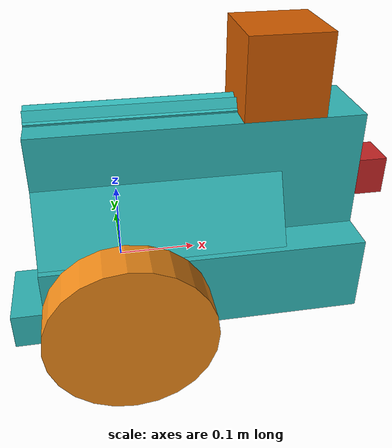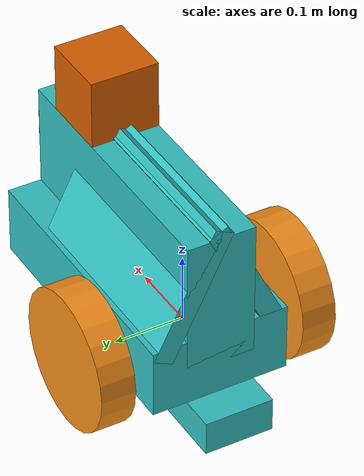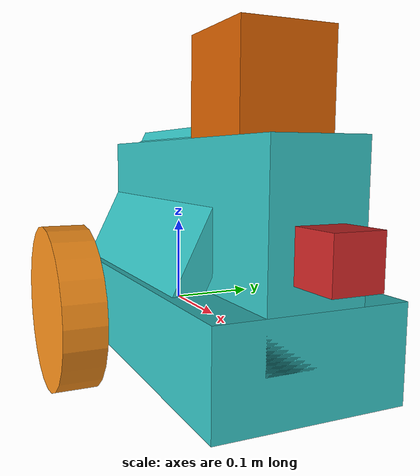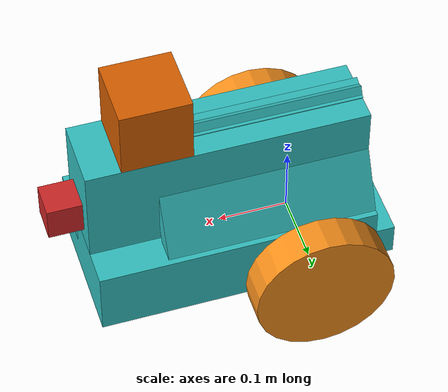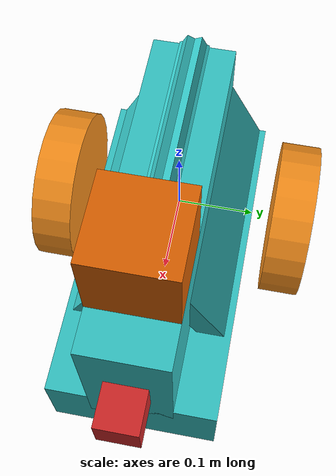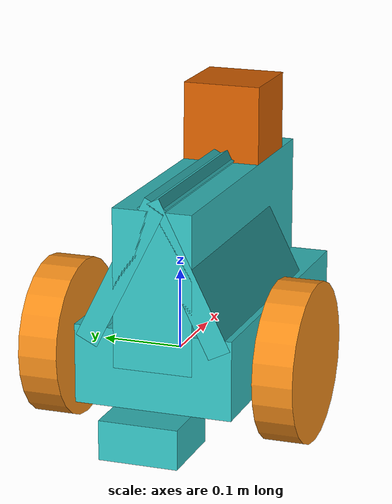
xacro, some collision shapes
<?xml version='1.0'?>

<robot name="ucho_bot" xmlns:xacro="http://www.ros.org/wiki/xacro">

<xacro:include filename="$(find udacity_bot)/urdf/ucho_bot.gazebo" />

  <link name="robot_footprint"></link>

  <joint name="robot_footprint_joint" type="fixed">
    <origin xyz="0 0 0" rpy="0 0 0" />
    <parent link="robot_footprint"/>
    <child link="chassis" />
  </joint>

<!--Chassis-->
  <link name='chassis'>
    <pose>0 0 0 0 0 0</pose>

    <inertial>
      <mass value="15.0"/>
      <origin xyz="0.0 0 0" rpy=" 0 0 0"/>
      <inertia
          ixx="0.1" ixy="0" ixz="0"
          iyy="0.1" iyz="0"
          izz="0.1"
      />
    </inertial>
				<!--Piece1-->
    <collision name='piece1_coll'>
      <origin xyz="0.1 0 0" rpy=" 0 0 0"/>
      <geometry>
        <box size=".4 .2 .1"/>
      </geometry>
    </collision>

    <visual name='piece1_visu'>
      <origin xyz="0.1 0 0" rpy=" 0 0 0"/>
      <geometry>
        <box size=".4 .2 .1"/>
      </geometry>
    </visual>

				<!--Piece2-->
    <collision name='piece2_coll'>
      <origin xyz="0.1 0 0.1" rpy=" 1.5708 0 0"/>
      <geometry>
        <box size=".4 .2 .1"/>
      </geometry>
    </collision>

    <visual name='piece2_visu'>
      <origin xyz="0.1 0 0.1" rpy=" 1.5708 0 0"/>
      <geometry>
        <box size=".4 .2 .1"/>
      </geometry>
    </visual>

				<!--Piece3-->
    <collision name='piece3_coll'>
      <origin xyz="0.05 -0.04 0.12" rpy=" 1.1071 0 0"/>
      <geometry>
        <box size=".3 .2 .03"/>
      </geometry>
    </collision>

    <visual name='piece3_visu'>
      <origin xyz="0.05 -0.04 0.12" rpy=" 1.1071 0 0"/>
      <geometry>
        <box size=".3 .2 .03"/>
      </geometry>
    </visual>

				<!--Piece4-->
    <collision name='piece4_coll'>
      <origin xyz="0.05 0.04 0.12" rpy=" -1.1071 0 0"/>
      <geometry>
        <box size=".3 .2 .03"/>
      </geometry>
    </collision>

    <visual name='piece4_visu'>
      <origin xyz="0.05 0.04 0.12" rpy=" -1.1071 0 0"/>
      <geometry>
        <box size=".3 .2 .03"/>
      </geometry>
    </visual>

    <collision name='back_caster_collision'>
      <origin xyz="0 0 -0.05" rpy=" 0 0 0"/>
      <geometry>
        <sphere radius="0.049"/>
      </geometry>
    </collision>

    <visual name='back_caster_visual'>
      <origin xyz="0 0 -0.05" rpy=" 0 0 0"/>
      <geometry>
        <sphere radius="0.05"/>
      </geometry>
    </visual>

    <collision name='front_caster_collision'>
      <origin xyz="0.2 0 -0.05" rpy=" 0 0 0"/>
      <geometry>
        <sphere radius="0.049"/>
      </geometry>
    </collision>

    <visual name='front_caster_visual'>
      <origin xyz="0.2 0 -0.05" rpy=" 0 0 0"/>
      <geometry>
        <sphere radius="0.05"/>
      </geometry>
    </visual>

    <collision name='back_barra_collision'>
      <origin xyz="-0.1 0 -0.075" rpy=" 0 0 0"/>
      <geometry>
        <box size=".1 .1 .05"/>
      </geometry>
    </collision>

    <visual name='back_barra_visual'>
      <origin xyz="-0.1 0 -0.075" rpy=" 0 0 0"/>
      <geometry>
        <box size=".1 .1 .05"/>
      </geometry>
    </visual>

  </link>

<!--Wheels-->
  <link name="left_wheel">

    <inertial>
      <mass value="5.0"/>
      <origin xyz="0.0 0 0" rpy=" 0 0 0"/>
      <inertia
          ixx="0.1" ixy="0" ixz="0"
          iyy="0.1" iyz="0"
          izz="0.1"
      />
    </inertial>

    <collision>
      <origin xyz="0 0 0" rpy="1.5707 0 0"/>
      <geometry>
        <cylinder radius="0.1" length="0.05"/>
      </geometry>
    </collision>

    <visual>
      <origin xyz="0 0 0" rpy="1.5707 0 0"/>
      <geometry>
        <cylinder radius="0.1" length="0.05"/>
      </geometry>
    </visual>

  </link>

  <joint type="continuous" name="left_wheel_hinge" >
    <origin xyz="0 0.15 0" rpy="0 0 0"/>
    <child link="left_wheel"/>
    <parent link="chassis" />
    <axis xyz="0 1 0" rpy="0 0 0" />
    <limit effort="10000" velocity="1000" />
    <joint_properties damping="1.0" friction="1.0" />
  </joint>

  <link name="right_wheel">

    <inertial>
      <mass value="5.0"/>
      <origin xyz="0.0 0 0" rpy=" 0 0 0"/>
      <inertia
          ixx="0.1" ixy="0" ixz="0"
          iyy="0.1" iyz="0"
          izz="0.1"
      />
    </inertial>

    <collision>
      <origin xyz="0 0 0" rpy="1.5707 0 0"/>
      <geometry>
        <cylinder radius="0.1" length="0.05"/>
      </geometry>
    </collision>

    <visual>
      <origin xyz="0 0 0" rpy="1.5707 0 0"/>
      <geometry>
        <cylinder radius="0.1" length="0.05"/>
      </geometry>
    </visual>
  </link>

  <joint type="continuous" name="right_wheel_hinge" >
    <origin xyz="0 -0.15 0" rpy="0 0 0"/>
    <child link="right_wheel"/>
    <parent link="chassis" />
    <axis xyz="0 1 0" rpy="0 0 0" />
    <limit effort="10000" velocity="1000" />
    <joint_properties damping="1.0" friction="1.0" />
  </joint>

<!--Camera-->
  <link name="camera">

    <inertial>
      <mass value="0.1"/>
      <origin xyz="0 0 0" rpy=" 0 0 0"/>
      <inertia
          ixx="1e-6" ixy="0" ixz="0"
          iyy="1e-6" iyz="0"
          izz="1e-6"
      />
    </inertial>

    <collision>
      <origin xyz="0 0 0" rpy=" 0 0 0"/>
      <geometry>
        <box size="0.05 0.05 0.05" />
      </geometry>
    </collision>

    <visual>
      <origin xyz="0 0 0" rpy=" 0 0 0"/>
      <geometry>
        <box size="0.05 0.05 0.05" />
      </geometry>
    </visual>

  </link>

  <joint type="fixed" name="camera_joint" >
    <origin xyz="0.325 0 0.1" rpy="0 0 0" />
    <child link="camera" />
    <parent link="chassis" />
  </joint>

<!--Laser-->
  <link name="hokuyo">

    <inertial>
      <mass value="0.1"/>
      <origin xyz="0 0 0" rpy=" 0 0 0"/>
      <inertia
          ixx="1e-6" ixy="0" ixz="0"
          iyy="1e-6" iyz="0"
          izz="1e-6"
      />
    </inertial>

    <collision>
      <origin xyz="0 0 0" rpy="0 0 0"/>
      <geometry>
        <box size="0.1 0.1 0.1" />
      </geometry>
    </collision>

    <visual>
      <origin xyz="0 0 -0.025" rpy="0 0 0"/>
      <geometry>
        <mesh filename="package://udacity_bot/meshes/hokuyo.dae" />
      </geometry>
    </visual>

  </link>

  <joint type="fixed" name="hokuyo_joint" >
    <origin xyz="0.20 0 0.25" />
    <child link="hokuyo" />
    <parent link="chassis" />
  </joint>

</robot>
